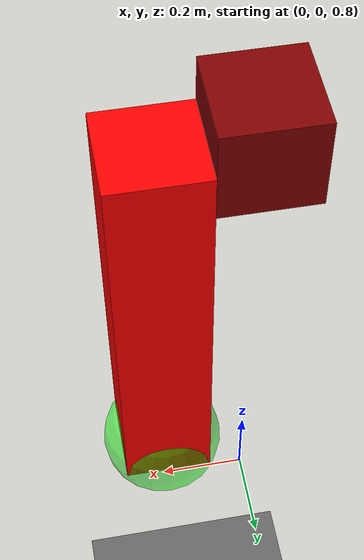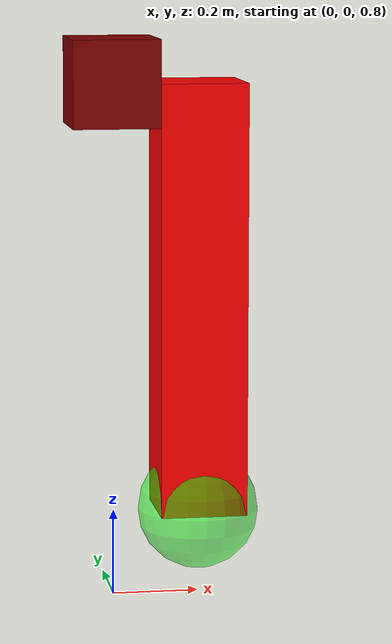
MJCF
<!-- TODO -->
<!-- (1) correct mass/inertial matricies (just weight for now) -->
<mujoco model="pendulum">
  <compiler angle="radian" />
  <size njmax="500" nconmax="100"/>
  <option timestep="0.002" integrator="Euler"/>
  <option>
      <flag multiccd="enable"/>
  </option>
  <asset>
    <texture name="texplane0" type="2d" builtin="checker" rgb1="0 0 0" rgb2="0.8 0.8 0.8" width="100" height="100" mark="cross" markrgb=".8 .8 .8"/>
    <material name="matplane0" reflectance="0.3" texture="texplane0" texrepeat="1 1" texuniform="true"/>
  </asset>
  <visual>
    <headlight ambient="0.6 0.6 0.6" diffuse="0.5 0.5 0.5" specular="0.2 0.2 0.2"/>
    <map znear="0.001" />
  </visual>
  <worldbody>
    <geom contype="1" friction="1 0 0.01" name="floor0" pos="0 0 0" euler="0 0 0" size="10 10 0.01" type="box" material="matplane0" condim="6"/>

    <body name="fix_box" pos="0.0 0.0 2" euler="0 0 0.0">
        <geom  type="box"  name="fix_box" contype="1" conaffinity="1"  condim="6"
               size="0.1 0.1 0.1"  pos="0 0 0" euler="0 0 0"  rgba="0.5 0 0 1.0"/>
        <body name="pendulum" pos="0.2 0.0 -0.5">
          <joint name="joint0" type="hinge" axis="1 0 0" limited="false" pos="0.0 0.0 0.5"
                   frictionloss="0.01" damping="0.1" armature="0.0002"  />
          <geom name="pendulum" type="box" contype="1" conaffinity="1" mass="0.5"
                  size="0.1 0.1 0.5"  rgba="1 0 0 1.0"/>
          <body name="ball" pos="0. 0.0 -0.5">
            <geom name="ball" type="sphere" contype="1" conaffinity="1" mass="0.5"
                  size="0.1414"  rgba="0 1 0 .5"/>
          </body>
        </body>
    </body>
  </worldbody>
    <actuator>
    <motor gear="1" forcelimited="true" forcerange="-10 10" name="joint0_motor" joint="joint0"/>
  </actuator>
  <sensor>
    <framepos name="global_position" objtype="xbody" objname="ball" reftype="xbody" refname="fix_box"/>
  </sensor>
</mujoco>
